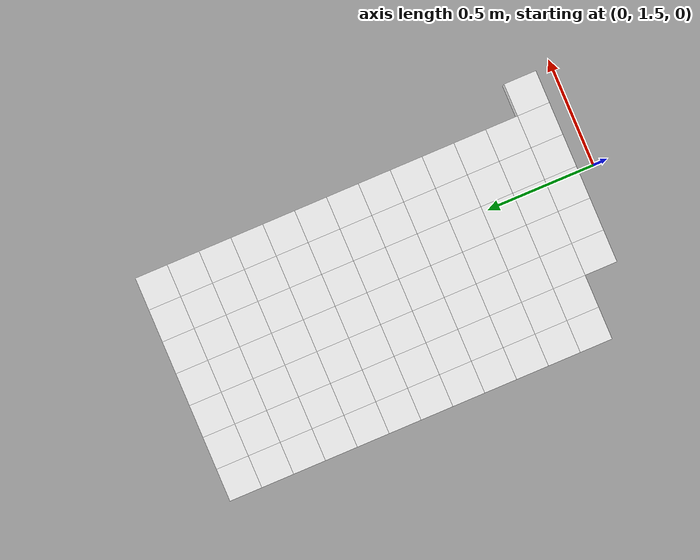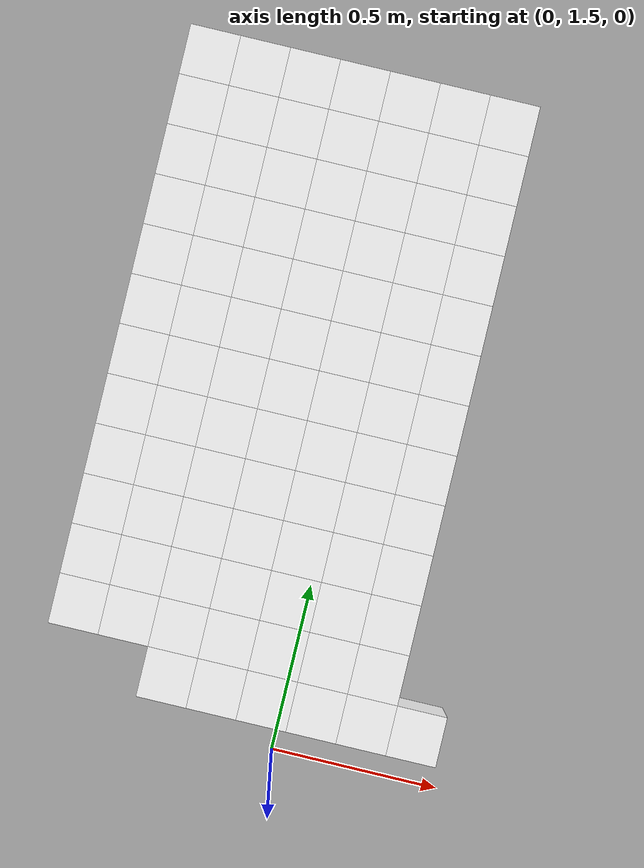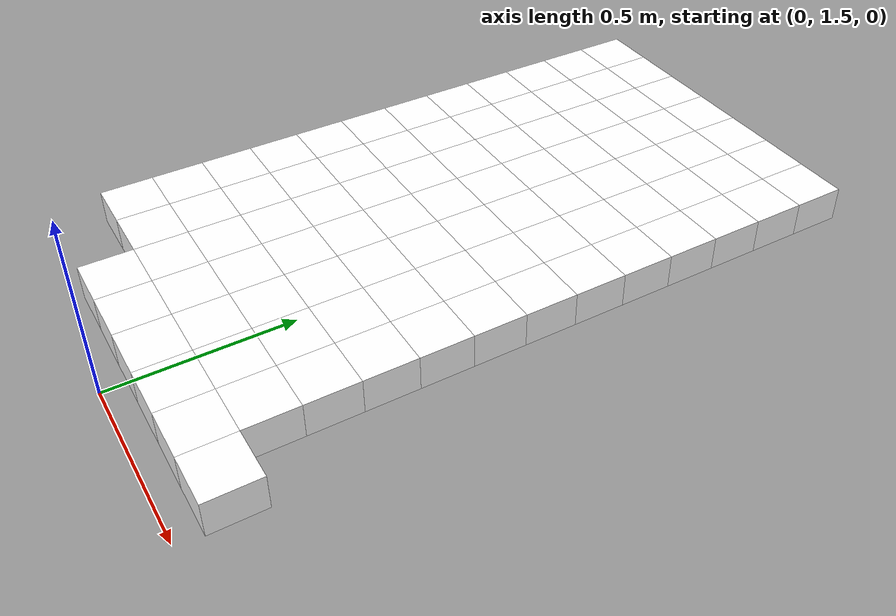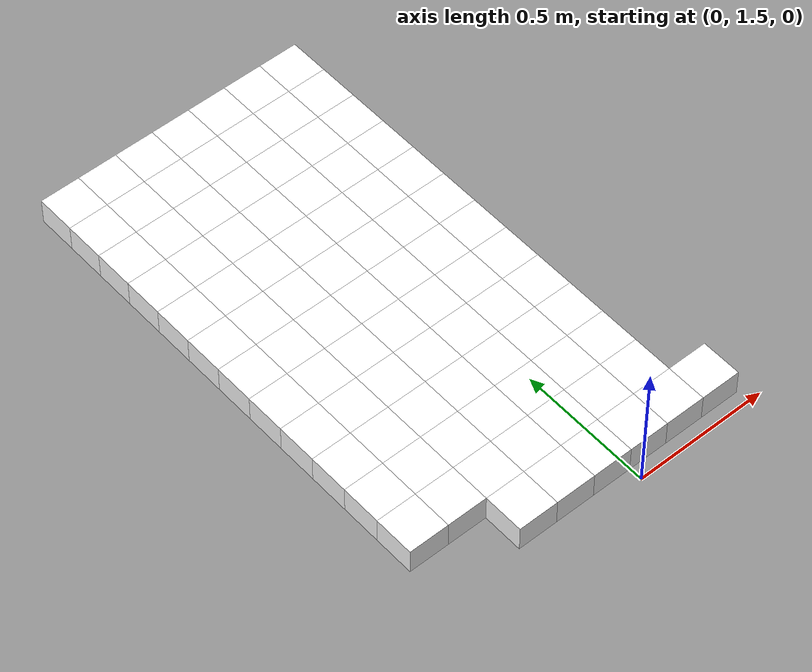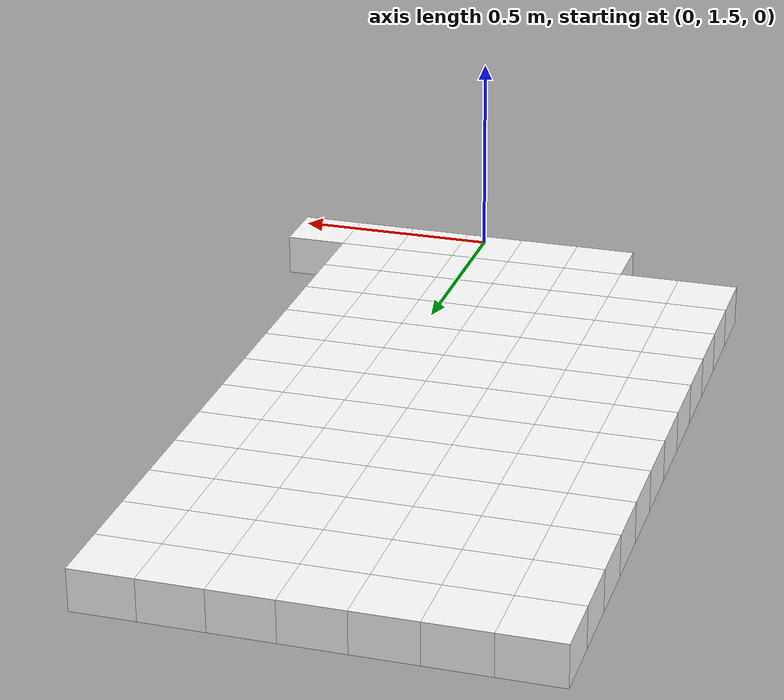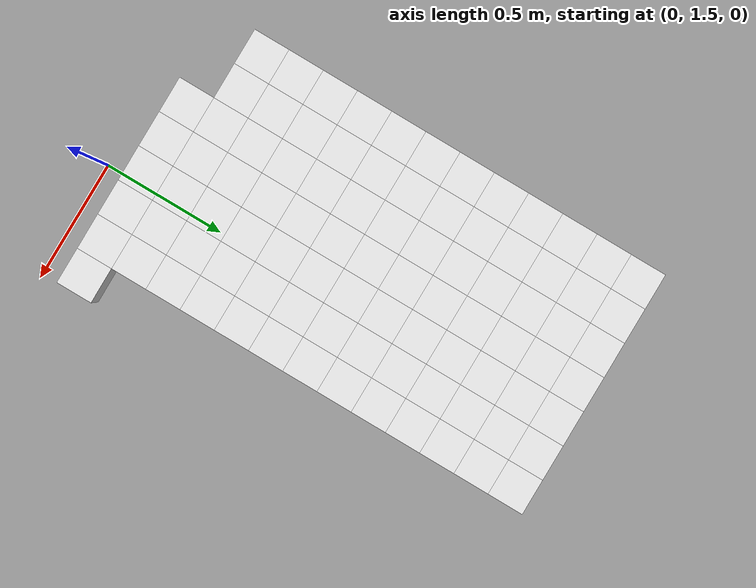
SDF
<sdf version="1.7">
 <world name="default">
  <include><uri>model://sun</uri></include>
  <model name="static_environment">
   <static>true</static>
   <link name="region_151">
    <pose>-0.3500000000000003 1.65 0.0 0.0 0.0 0.0</pose>
    <collision name="region_151_collision">
     <geometry><box><size>0.15 0.15 0.1</size></box></geometry>
     <surface><friction><ode><mu>1.0</mu><mu2>1.0</mu2></ode></friction></surface>
    </collision>
    <visual name="region_151_visual">
     <geometry><box><size>0.15 0.15 0.1</size></box></geometry>
     <material><ambient>1.0 1.0 1.0 1.0</ambient><diffuse>1.0 1.0 1.0 1.0</diffuse></material>
    </visual>
   </link>
   <link name="region_152">
    <pose>-0.2000000000000004 1.65 0.0 0.0 0.0 0.0</pose>
    <collision name="region_152_collision">
     <geometry><box><size>0.15 0.15 0.1</size></box></geometry>
     <surface><friction><ode><mu>1.0</mu><mu2>1.0</mu2></ode></friction></surface>
    </collision>
    <visual name="region_152_visual">
     <geometry><box><size>0.15 0.15 0.1</size></box></geometry>
     <material><ambient>1.0 1.0 1.0 1.0</ambient><diffuse>1.0 1.0 1.0 1.0</diffuse></material>
    </visual>
   </link>
   <link name="region_153">
    <pose>-0.05000000000000049 1.65 0.0 0.0 0.0 0.0</pose>
    <collision name="region_153_collision">
     <geometry><box><size>0.15 0.15 0.1</size></box></geometry>
     <surface><friction><ode><mu>1.0</mu><mu2>1.0</mu2></ode></friction></surface>
    </collision>
    <visual name="region_153_visual">
     <geometry><box><size>0.15 0.15 0.1</size></box></geometry>
     <material><ambient>1.0 1.0 1.0 1.0</ambient><diffuse>1.0 1.0 1.0 1.0</diffuse></material>
    </visual>
   </link>
   <link name="region_154">
    <pose>0.09999999999999964 1.65 0.0 0.0 0.0 0.0</pose>
    <collision name="region_154_collision">
     <geometry><box><size>0.15 0.15 0.1</size></box></geometry>
     <surface><friction><ode><mu>1.0</mu><mu2>1.0</mu2></ode></friction></surface>
    </collision>
    <visual name="region_154_visual">
     <geometry><box><size>0.15 0.15 0.1</size></box></geometry>
     <material><ambient>1.0 1.0 1.0 1.0</ambient><diffuse>1.0 1.0 1.0 1.0</diffuse></material>
    </visual>
   </link>
   <link name="region_155">
    <pose>0.24999999999999956 1.65 0.0 0.0 0.0 0.0</pose>
    <collision name="region_155_collision">
     <geometry><box><size>0.15 0.15 0.1</size></box></geometry>
     <surface><friction><ode><mu>1.0</mu><mu2>1.0</mu2></ode></friction></surface>
    </collision>
    <visual name="region_155_visual">
     <geometry><box><size>0.15 0.15 0.1</size></box></geometry>
     <material><ambient>1.0 1.0 1.0 1.0</ambient><diffuse>1.0 1.0 1.0 1.0</diffuse></material>
    </visual>
   </link>
   <link name="region_156">
    <pose>0.39999999999999947 1.65 0.0 0.0 0.0 0.0</pose>
    <collision name="region_156_collision">
     <geometry><box><size>0.15 0.15 0.1</size></box></geometry>
     <surface><friction><ode><mu>1.0</mu><mu2>1.0</mu2></ode></friction></surface>
    </collision>
    <visual name="region_156_visual">
     <geometry><box><size>0.15 0.15 0.1</size></box></geometry>
     <material><ambient>1.0 1.0 1.0 1.0</ambient><diffuse>1.0 1.0 1.0 1.0</diffuse></material>
    </visual>
   </link>
   <link name="region_169">
    <pose>-0.6500000000000001 1.7999999999999998 0.0 0.0 0.0 0.0</pose>
    <collision name="region_169_collision">
     <geometry><box><size>0.15 0.15 0.1</size></box></geometry>
     <surface><friction><ode><mu>1.0</mu><mu2>1.0</mu2></ode></friction></surface>
    </collision>
    <visual name="region_169_visual">
     <geometry><box><size>0.15 0.15 0.1</size></box></geometry>
     <material><ambient>1.0 1.0 1.0 1.0</ambient><diffuse>1.0 1.0 1.0 1.0</diffuse></material>
    </visual>
   </link>
   <link name="region_170">
    <pose>-0.5000000000000002 1.7999999999999998 0.0 0.0 0.0 0.0</pose>
    <collision name="region_170_collision">
     <geometry><box><size>0.15 0.15 0.1</size></box></geometry>
     <surface><friction><ode><mu>1.0</mu><mu2>1.0</mu2></ode></friction></surface>
    </collision>
    <visual name="region_170_visual">
     <geometry><box><size>0.15 0.15 0.1</size></box></geometry>
     <material><ambient>1.0 1.0 1.0 1.0</ambient><diffuse>1.0 1.0 1.0 1.0</diffuse></material>
    </visual>
   </link>
   <link name="region_171">
    <pose>-0.3500000000000003 1.7999999999999998 0.0 0.0 0.0 0.0</pose>
    <collision name="region_171_collision">
     <geometry><box><size>0.15 0.15 0.1</size></box></geometry>
     <surface><friction><ode><mu>1.0</mu><mu2>1.0</mu2></ode></friction></surface>
    </collision>
    <visual name="region_171_visual">
     <geometry><box><size>0.15 0.15 0.1</size></box></geometry>
     <material><ambient>1.0 1.0 1.0 1.0</ambient><diffuse>1.0 1.0 1.0 1.0</diffuse></material>
    </visual>
   </link>
   <link name="region_172">
    <pose>-0.2000000000000004 1.7999999999999998 0.0 0.0 0.0 0.0</pose>
    <collision name="region_172_collision">
     <geometry><box><size>0.15 0.15 0.1</size></box></geometry>
     <surface><friction><ode><mu>1.0</mu><mu2>1.0</mu2></ode></friction></surface>
    </collision>
    <visual name="region_172_visual">
     <geometry><box><size>0.15 0.15 0.1</size></box></geometry>
     <material><ambient>1.0 1.0 1.0 1.0</ambient><diffuse>1.0 1.0 1.0 1.0</diffuse></material>
    </visual>
   </link>
   <link name="region_173">
    <pose>-0.05000000000000049 1.7999999999999998 0.0 0.0 0.0 0.0</pose>
    <collision name="region_173_collision">
     <geometry><box><size>0.15 0.15 0.1</size></box></geometry>
     <surface><friction><ode><mu>1.0</mu><mu2>1.0</mu2></ode></friction></surface>
    </collision>
    <visual name="region_173_visual">
     <geometry><box><size>0.15 0.15 0.1</size></box></geometry>
     <material><ambient>1.0 1.0 1.0 1.0</ambient><diffuse>1.0 1.0 1.0 1.0</diffuse></material>
    </visual>
   </link>
   <link name="region_174">
    <pose>0.09999999999999964 1.7999999999999998 0.0 0.0 0.0 0.0</pose>
    <collision name="region_174_collision">
     <geometry><box><size>0.15 0.15 0.1</size></box></geometry>
     <surface><friction><ode><mu>1.0</mu><mu2>1.0</mu2></ode></friction></surface>
    </collision>
    <visual name="region_174_visual">
     <geometry><box><size>0.15 0.15 0.1</size></box></geometry>
     <material><ambient>1.0 1.0 1.0 1.0</ambient><diffuse>1.0 1.0 1.0 1.0</diffuse></material>
    </visual>
   </link>
   <link name="region_175">
    <pose>0.24999999999999956 1.7999999999999998 0.0 0.0 0.0 0.0</pose>
    <collision name="region_175_collision">
     <geometry><box><size>0.15 0.15 0.1</size></box></geometry>
     <surface><friction><ode><mu>1.0</mu><mu2>1.0</mu2></ode></friction></surface>
    </collision>
    <visual name="region_175_visual">
     <geometry><box><size>0.15 0.15 0.1</size></box></geometry>
     <material><ambient>1.0 1.0 1.0 1.0</ambient><diffuse>1.0 1.0 1.0 1.0</diffuse></material>
    </visual>
   </link>
   <link name="region_189">
    <pose>-0.6500000000000001 1.9499999999999997 0.0 0.0 0.0 0.0</pose>
    <collision name="region_189_collision">
     <geometry><box><size>0.15 0.15 0.1</size></box></geometry>
     <surface><friction><ode><mu>1.0</mu><mu2>1.0</mu2></ode></friction></surface>
    </collision>
    <visual name="region_189_visual">
     <geometry><box><size>0.15 0.15 0.1</size></box></geometry>
     <material><ambient>1.0 1.0 1.0 1.0</ambient><diffuse>1.0 1.0 1.0 1.0</diffuse></material>
    </visual>
   </link>
   <link name="region_190">
    <pose>-0.5000000000000002 1.9499999999999997 0.0 0.0 0.0 0.0</pose>
    <collision name="region_190_collision">
     <geometry><box><size>0.15 0.15 0.1</size></box></geometry>
     <surface><friction><ode><mu>1.0</mu><mu2>1.0</mu2></ode></friction></surface>
    </collision>
    <visual name="region_190_visual">
     <geometry><box><size>0.15 0.15 0.1</size></box></geometry>
     <material><ambient>1.0 1.0 1.0 1.0</ambient><diffuse>1.0 1.0 1.0 1.0</diffuse></material>
    </visual>
   </link>
   <link name="region_191">
    <pose>-0.3500000000000003 1.9499999999999997 0.0 0.0 0.0 0.0</pose>
    <collision name="region_191_collision">
     <geometry><box><size>0.15 0.15 0.1</size></box></geometry>
     <surface><friction><ode><mu>1.0</mu><mu2>1.0</mu2></ode></friction></surface>
    </collision>
    <visual name="region_191_visual">
     <geometry><box><size>0.15 0.15 0.1</size></box></geometry>
     <material><ambient>1.0 1.0 1.0 1.0</ambient><diffuse>1.0 1.0 1.0 1.0</diffuse></material>
    </visual>
   </link>
   <link name="region_192">
    <pose>-0.2000000000000004 1.9499999999999997 0.0 0.0 0.0 0.0</pose>
    <collision name="region_192_collision">
     <geometry><box><size>0.15 0.15 0.1</size></box></geometry>
     <surface><friction><ode><mu>1.0</mu><mu2>1.0</mu2></ode></friction></surface>
    </collision>
    <visual name="region_192_visual">
     <geometry><box><size>0.15 0.15 0.1</size></box></geometry>
     <material><ambient>1.0 1.0 1.0 1.0</ambient><diffuse>1.0 1.0 1.0 1.0</diffuse></material>
    </visual>
   </link>
   <link name="region_193">
    <pose>-0.05000000000000049 1.9499999999999997 0.0 0.0 0.0 0.0</pose>
    <collision name="region_193_collision">
     <geometry><box><size>0.15 0.15 0.1</size></box></geometry>
     <surface><friction><ode><mu>1.0</mu><mu2>1.0</mu2></ode></friction></surface>
    </collision>
    <visual name="region_193_visual">
     <geometry><box><size>0.15 0.15 0.1</size></box></geometry>
     <material><ambient>1.0 1.0 1.0 1.0</ambient><diffuse>1.0 1.0 1.0 1.0</diffuse></material>
    </visual>
   </link>
   <link name="region_194">
    <pose>0.09999999999999964 1.9499999999999997 0.0 0.0 0.0 0.0</pose>
    <collision name="region_194_collision">
     <geometry><box><size>0.15 0.15 0.1</size></box></geometry>
     <surface><friction><ode><mu>1.0</mu><mu2>1.0</mu2></ode></friction></surface>
    </collision>
    <visual name="region_194_visual">
     <geometry><box><size>0.15 0.15 0.1</size></box></geometry>
     <material><ambient>1.0 1.0 1.0 1.0</ambient><diffuse>1.0 1.0 1.0 1.0</diffuse></material>
    </visual>
   </link>
   <link name="region_195">
    <pose>0.24999999999999956 1.9499999999999997 0.0 0.0 0.0 0.0</pose>
    <collision name="region_195_collision">
     <geometry><box><size>0.15 0.15 0.1</size></box></geometry>
     <surface><friction><ode><mu>1.0</mu><mu2>1.0</mu2></ode></friction></surface>
    </collision>
    <visual name="region_195_visual">
     <geometry><box><size>0.15 0.15 0.1</size></box></geometry>
     <material><ambient>1.0 1.0 1.0 1.0</ambient><diffuse>1.0 1.0 1.0 1.0</diffuse></material>
    </visual>
   </link>
   <link name="region_209">
    <pose>-0.6500000000000001 2.0999999999999996 0.0 0.0 0.0 0.0</pose>
    <collision name="region_209_collision">
     <geometry><box><size>0.15 0.15 0.1</size></box></geometry>
     <surface><friction><ode><mu>1.0</mu><mu2>1.0</mu2></ode></friction></surface>
    </collision>
    <visual name="region_209_visual">
     <geometry><box><size>0.15 0.15 0.1</size></box></geometry>
     <material><ambient>1.0 1.0 1.0 1.0</ambient><diffuse>1.0 1.0 1.0 1.0</diffuse></material>
    </visual>
   </link>
   <link name="region_210">
    <pose>-0.5000000000000002 2.0999999999999996 0.0 0.0 0.0 0.0</pose>
    <collision name="region_210_collision">
     <geometry><box><size>0.15 0.15 0.1</size></box></geometry>
     <surface><friction><ode><mu>1.0</mu><mu2>1.0</mu2></ode></friction></surface>
    </collision>
    <visual name="region_210_visual">
     <geometry><box><size>0.15 0.15 0.1</size></box></geometry>
     <material><ambient>1.0 1.0 1.0 1.0</ambient><diffuse>1.0 1.0 1.0 1.0</diffuse></material>
    </visual>
   </link>
   <link name="region_211">
    <pose>-0.3500000000000003 2.0999999999999996 0.0 0.0 0.0 0.0</pose>
    <collision name="region_211_collision">
     <geometry><box><size>0.15 0.15 0.1</size></box></geometry>
     <surface><friction><ode><mu>1.0</mu><mu2>1.0</mu2></ode></friction></surface>
    </collision>
    <visual name="region_211_visual">
     <geometry><box><size>0.15 0.15 0.1</size></box></geometry>
     <material><ambient>1.0 1.0 1.0 1.0</ambient><diffuse>1.0 1.0 1.0 1.0</diffuse></material>
    </visual>
   </link>
   <link name="region_212">
    <pose>-0.2000000000000004 2.0999999999999996 0.0 0.0 0.0 0.0</pose>
    <collision name="region_212_collision">
     <geometry><box><size>0.15 0.15 0.1</size></box></geometry>
     <surface><friction><ode><mu>1.0</mu><mu2>1.0</mu2></ode></friction></surface>
    </collision>
    <visual name="region_212_visual">
     <geometry><box><size>0.15 0.15 0.1</size></box></geometry>
     <material><ambient>1.0 1.0 1.0 1.0</ambient><diffuse>1.0 1.0 1.0 1.0</diffuse></material>
    </visual>
   </link>
   <link name="region_213">
    <pose>-0.05000000000000049 2.0999999999999996 0.0 0.0 0.0 0.0</pose>
    <collision name="region_213_collision">
     <geometry><box><size>0.15 0.15 0.1</size></box></geometry>
     <surface><friction><ode><mu>1.0</mu><mu2>1.0</mu2></ode></friction></surface>
    </collision>
    <visual name="region_213_visual">
     <geometry><box><size>0.15 0.15 0.1</size></box></geometry>
     <material><ambient>1.0 1.0 1.0 1.0</ambient><diffuse>1.0 1.0 1.0 1.0</diffuse></material>
    </visual>
   </link>
   <link name="region_214">
    <pose>0.09999999999999964 2.0999999999999996 0.0 0.0 0.0 0.0</pose>
    <collision name="region_214_collision">
     <geometry><box><size>0.15 0.15 0.1</size></box></geometry>
     <surface><friction><ode><mu>1.0</mu><mu2>1.0</mu2></ode></friction></surface>
    </collision>
    <visual name="region_214_visual">
     <geometry><box><size>0.15 0.15 0.1</size></box></geometry>
     <material><ambient>1.0 1.0 1.0 1.0</ambient><diffuse>1.0 1.0 1.0 1.0</diffuse></material>
    </visual>
   </link>
   <link name="region_215">
    <pose>0.24999999999999956 2.0999999999999996 0.0 0.0 0.0 0.0</pose>
    <collision name="region_215_collision">
     <geometry><box><size>0.15 0.15 0.1</size></box></geometry>
     <surface><friction><ode><mu>1.0</mu><mu2>1.0</mu2></ode></friction></surface>
    </collision>
    <visual name="region_215_visual">
     <geometry><box><size>0.15 0.15 0.1</size></box></geometry>
     <material><ambient>1.0 1.0 1.0 1.0</ambient><diffuse>1.0 1.0 1.0 1.0</diffuse></material>
    </visual>
   </link>
   <link name="region_229">
    <pose>-0.6500000000000001 2.2499999999999996 0.0 0.0 0.0 0.0</pose>
    <collision name="region_229_collision">
     <geometry><box><size>0.15 0.15 0.1</size></box></geometry>
     <surface><friction><ode><mu>1.0</mu><mu2>1.0</mu2></ode></friction></surface>
    </collision>
    <visual name="region_229_visual">
     <geometry><box><size>0.15 0.15 0.1</size></box></geometry>
     <material><ambient>1.0 1.0 1.0 1.0</ambient><diffuse>1.0 1.0 1.0 1.0</diffuse></material>
    </visual>
   </link>
   <link name="region_230">
    <pose>-0.5000000000000002 2.2499999999999996 0.0 0.0 0.0 0.0</pose>
    <collision name="region_230_collision">
     <geometry><box><size>0.15 0.15 0.1</size></box></geometry>
     <surface><friction><ode><mu>1.0</mu><mu2>1.0</mu2></ode></friction></surface>
    </collision>
    <visual name="region_230_visual">
     <geometry><box><size>0.15 0.15 0.1</size></box></geometry>
     <material><ambient>1.0 1.0 1.0 1.0</ambient><diffuse>1.0 1.0 1.0 1.0</diffuse></material>
    </visual>
   </link>
   <link name="region_231">
    <pose>-0.3500000000000003 2.2499999999999996 0.0 0.0 0.0 0.0</pose>
    <collision name="region_231_collision">
     <geometry><box><size>0.15 0.15 0.1</size></box></geometry>
     <surface><friction><ode><mu>1.0</mu><mu2>1.0</mu2></ode></friction></surface>
    </collision>
    <visual name="region_231_visual">
     <geometry><box><size>0.15 0.15 0.1</size></box></geometry>
     <material><ambient>1.0 1.0 1.0 1.0</ambient><diffuse>1.0 1.0 1.0 1.0</diffuse></material>
    </visual>
   </link>
   <link name="region_232">
    <pose>-0.2000000000000004 2.2499999999999996 0.0 0.0 0.0 0.0</pose>
    <collision name="region_232_collision">
     <geometry><box><size>0.15 0.15 0.1</size></box></geometry>
     <surface><friction><ode><mu>1.0</mu><mu2>1.0</mu2></ode></friction></surface>
    </collision>
    <visual name="region_232_visual">
     <geometry><box><size>0.15 0.15 0.1</size></box></geometry>
     <material><ambient>1.0 1.0 1.0 1.0</ambient><diffuse>1.0 1.0 1.0 1.0</diffuse></material>
    </visual>
   </link>
   <link name="region_233">
    <pose>-0.05000000000000049 2.2499999999999996 0.0 0.0 0.0 0.0</pose>
    <collision name="region_233_collision">
     <geometry><box><size>0.15 0.15 0.1</size></box></geometry>
     <surface><friction><ode><mu>1.0</mu><mu2>1.0</mu2></ode></friction></surface>
    </collision>
    <visual name="region_233_visual">
     <geometry><box><size>0.15 0.15 0.1</size></box></geometry>
     <material><ambient>1.0 1.0 1.0 1.0</ambient><diffuse>1.0 1.0 1.0 1.0</diffuse></material>
    </visual>
   </link>
   <link name="region_234">
    <pose>0.09999999999999964 2.2499999999999996 0.0 0.0 0.0 0.0</pose>
    <collision name="region_234_collision">
     <geometry><box><size>0.15 0.15 0.1</size></box></geometry>
     <surface><friction><ode><mu>1.0</mu><mu2>1.0</mu2></ode></friction></surface>
    </collision>
    <visual name="region_234_visual">
     <geometry><box><size>0.15 0.15 0.1</size></box></geometry>
     <material><ambient>1.0 1.0 1.0 1.0</ambient><diffuse>1.0 1.0 1.0 1.0</diffuse></material>
    </visual>
   </link>
   <link name="region_235">
    <pose>0.24999999999999956 2.2499999999999996 0.0 0.0 0.0 0.0</pose>
    <collision name="region_235_collision">
     <geometry><box><size>0.15 0.15 0.1</size></box></geometry>
     <surface><friction><ode><mu>1.0</mu><mu2>1.0</mu2></ode></friction></surface>
    </collision>
    <visual name="region_235_visual">
     <geometry><box><size>0.15 0.15 0.1</size></box></geometry>
     <material><ambient>1.0 1.0 1.0 1.0</ambient><diffuse>1.0 1.0 1.0 1.0</diffuse></material>
    </visual>
   </link>
   <link name="region_249">
    <pose>-0.6500000000000001 2.3999999999999995 0.0 0.0 0.0 0.0</pose>
    <collision name="region_249_collision">
     <geometry><box><size>0.15 0.15 0.1</size></box></geometry>
     <surface><friction><ode><mu>1.0</mu><mu2>1.0</mu2></ode></friction></surface>
    </collision>
    <visual name="region_249_visual">
     <geometry><box><size>0.15 0.15 0.1</size></box></geometry>
     <material><ambient>1.0 1.0 1.0 1.0</ambient><diffuse>1.0 1.0 1.0 1.0</diffuse></material>
    </visual>
   </link>
   <link name="region_250">
    <pose>-0.5000000000000002 2.3999999999999995 0.0 0.0 0.0 0.0</pose>
    <collision name="region_250_collision">
     <geometry><box><size>0.15 0.15 0.1</size></box></geometry>
     <surface><friction><ode><mu>1.0</mu><mu2>1.0</mu2></ode></friction></surface>
    </collision>
    <visual name="region_250_visual">
     <geometry><box><size>0.15 0.15 0.1</size></box></geometry>
     <material><ambient>1.0 1.0 1.0 1.0</ambient><diffuse>1.0 1.0 1.0 1.0</diffuse></material>
    </visual>
   </link>
   <link name="region_251">
    <pose>-0.3500000000000003 2.3999999999999995 0.0 0.0 0.0 0.0</pose>
    <collision name="region_251_collision">
     <geometry><box><size>0.15 0.15 0.1</size></box></geometry>
     <surface><friction><ode><mu>1.0</mu><mu2>1.0</mu2></ode></friction></surface>
    </collision>
    <visual name="region_251_visual">
     <geometry><box><size>0.15 0.15 0.1</size></box></geometry>
     <material><ambient>1.0 1.0 1.0 1.0</ambient><diffuse>1.0 1.0 1.0 1.0</diffuse></material>
    </visual>
   </link>
   <link name="region_252">
    <pose>-0.2000000000000004 2.3999999999999995 0.0 0.0 0.0 0.0</pose>
    <collision name="region_252_collision">
     <geometry><box><size>0.15 0.15 0.1</size></box></geometry>
     <surface><friction><ode><mu>1.0</mu><mu2>1.0</mu2></ode></friction></surface>
    </collision>
    <visual name="region_252_visual">
     <geometry><box><size>0.15 0.15 0.1</size></box></geometry>
     <material><ambient>1.0 1.0 1.0 1.0</ambient><diffuse>1.0 1.0 1.0 1.0</diffuse></material>
    </visual>
   </link>
   <link name="region_253">
    <pose>-0.05000000000000049 2.3999999999999995 0.0 0.0 0.0 0.0</pose>
    <collision name="region_253_collision">
     <geometry><box><size>0.15 0.15 0.1</size></box></geometry>
     <surface><friction><ode><mu>1.0</mu><mu2>1.0</mu2></ode></friction></surface>
    </collision>
    <visual name="region_253_visual">
     <geometry><box><size>0.15 0.15 0.1</size></box></geometry>
     <material><ambient>1.0 1.0 1.0 1.0</ambient><diffuse>1.0 1.0 1.0 1.0</diffuse></material>
    </visual>
   </link>
   <link name="region_254">
    <pose>0.09999999999999964 2.3999999999999995 0.0 0.0 0.0 0.0</pose>
    <collision name="region_254_collision">
     <geometry><box><size>0.15 0.15 0.1</size></box></geometry>
     <surface><friction><ode><mu>1.0</mu><mu2>1.0</mu2></ode></friction></surface>
    </collision>
    <visual name="region_254_visual">
     <geometry><box><size>0.15 0.15 0.1</size></box></geometry>
     <material><ambient>1.0 1.0 1.0 1.0</ambient><diffuse>1.0 1.0 1.0 1.0</diffuse></material>
    </visual>
   </link>
   <link name="region_255">
    <pose>0.24999999999999956 2.3999999999999995 0.0 0.0 0.0 0.0</pose>
    <collision name="region_255_collision">
     <geometry><box><size>0.15 0.15 0.1</size></box></geometry>
     <surface><friction><ode><mu>1.0</mu><mu2>1.0</mu2></ode></friction></surface>
    </collision>
    <visual name="region_255_visual">
     <geometry><box><size>0.15 0.15 0.1</size></box></geometry>
     <material><ambient>1.0 1.0 1.0 1.0</ambient><diffuse>1.0 1.0 1.0 1.0</diffuse></material>
    </visual>
   </link>
   <link name="region_269">
    <pose>-0.6500000000000001 2.5499999999999994 0.0 0.0 0.0 0.0</pose>
    <collision name="region_269_collision">
     <geometry><box><size>0.15 0.15 0.1</size></box></geometry>
     <surface><friction><ode><mu>1.0</mu><mu2>1.0</mu2></ode></friction></surface>
    </collision>
    <visual name="region_269_visual">
     <geometry><box><size>0.15 0.15 0.1</size></box></geometry>
     <material><ambient>1.0 1.0 1.0 1.0</ambient><diffuse>1.0 1.0 1.0 1.0</diffuse></material>
    </visual>
   </link>
   <link name="region_270">
    <pose>-0.5000000000000002 2.5499999999999994 0.0 0.0 0.0 0.0</pose>
    <collision name="region_270_collision">
     <geometry><box><size>0.15 0.15 0.1</size></box></geometry>
     <surface><friction><ode><mu>1.0</mu><mu2>1.0</mu2></ode></friction></surface>
    </collision>
    <visual name="region_270_visual">
     <geometry><box><size>0.15 0.15 0.1</size></box></geometry>
     <material><ambient>1.0 1.0 1.0 1.0</ambient><diffuse>1.0 1.0 1.0 1.0</diffuse></material>
    </visual>
   </link>
   <link name="region_271">
    <pose>-0.3500000000000003 2.5499999999999994 0.0 0.0 0.0 0.0</pose>
    <collision name="region_271_collision">
     <geometry><box><size>0.15 0.15 0.1</size></box></geometry>
     <surface><friction><ode><mu>1.0</mu><mu2>1.0</mu2></ode></friction></surface>
    </collision>
    <visual name="region_271_visual">
     <geometry><box><size>0.15 0.15 0.1</size></box></geometry>
     <material><ambient>1.0 1.0 1.0 1.0</ambient><diffuse>1.0 1.0 1.0 1.0</diffuse></material>
    </visual>
   </link>
   <link name="region_272">
    <pose>-0.2000000000000004 2.5499999999999994 0.0 0.0 0.0 0.0</pose>
    <collision name="region_272_collision">
     <geometry><box><size>0.15 0.15 0.1</size></box></geometry>
     <surface><friction><ode><mu>1.0</mu><mu2>1.0</mu2></ode></friction></surface>
    </collision>
    <visual name="region_272_visual">
     <geometry><box><size>0.15 0.15 0.1</size></box></geometry>
     <material><ambient>1.0 1.0 1.0 1.0</ambient><diffuse>1.0 1.0 1.0 1.0</diffuse></material>
    </visual>
   </link>
   <link name="region_273">
    <pose>-0.05000000000000049 2.5499999999999994 0.0 0.0 0.0 0.0</pose>
    <collision name="region_273_collision">
     <geometry><box><size>0.15 0.15 0.1</size></box></geometry>
     <surface><friction><ode><mu>1.0</mu><mu2>1.0</mu2></ode></friction></surface>
    </collision>
    <visual name="region_273_visual">
     <geometry><box><size>0.15 0.15 0.1</size></box></geometry>
     <material><ambient>1.0 1.0 1.0 1.0</ambient><diffuse>1.0 1.0 1.0 1.0</diffuse></material>
    </visual>
   </link>
   <link name="region_274">
    <pose>0.09999999999999964 2.5499999999999994 0.0 0.0 0.0 0.0</pose>
    <collision name="region_274_collision">
     <geometry><box><size>0.15 0.15 0.1</size></box></geometry>
     <surface><friction><ode><mu>1.0</mu><mu2>1.0</mu2></ode></friction></surface>
    </collision>
    <visual name="region_274_visual">
     <geometry><box><size>0.15 0.15 0.1</size></box></geometry>
     <material><ambient>1.0 1.0 1.0 1.0</ambient><diffuse>1.0 1.0 1.0 1.0</diffuse></material>
    </visual>
   </link>
   <link name="region_275">
    <pose>0.24999999999999956 2.5499999999999994 0.0 0.0 0.0 0.0</pose>
    <collision name="region_275_collision">
     <geometry><box><size>0.15 0.15 0.1</size></box></geometry>
     <surface><friction><ode><mu>1.0</mu><mu2>1.0</mu2></ode></friction></surface>
    </collision>
    <visual name="region_275_visual">
     <geometry><box><size>0.15 0.15 0.1</size></box></geometry>
     <material><ambient>1.0 1.0 1.0 1.0</ambient><diffuse>1.0 1.0 1.0 1.0</diffuse></material>
    </visual>
   </link>
   <link name="region_289">
    <pose>-0.6500000000000001 2.6999999999999997 0.0 0.0 0.0 0.0</pose>
    <collision name="region_289_collision">
     <geometry><box><size>0.15 0.15 0.1</size></box></geometry>
     <surface><friction><ode><mu>1.0</mu><mu2>1.0</mu2></ode></friction></surface>
    </collision>
    <visual name="region_289_visual">
     <geometry><box><size>0.15 0.15 0.1</size></box></geometry>
     <material><ambient>1.0 1.0 1.0 1.0</ambient><diffuse>1.0 1.0 1.0 1.0</diffuse></material>
    </visual>
   </link>
   <link name="region_290">
    <pose>-0.5000000000000002 2.6999999999999997 0.0 0.0 0.0 0.0</pose>
    <collision name="region_290_collision">
     <geometry><box><size>0.15 0.15 0.1</size></box></geometry>
     <surface><friction><ode><mu>1.0</mu><mu2>1.0</mu2></ode></friction></surface>
    </collision>
    <visual name="region_290_visual">
     <geometry><box><size>0.15 0.15 0.1</size></box></geometry>
     <material><ambient>1.0 1.0 1.0 1.0</ambient><diffuse>1.0 1.0 1.0 1.0</diffuse></material>
    </visual>
   </link>
   <link name="region_291">
    <pose>-0.3500000000000003 2.6999999999999997 0.0 0.0 0.0 0.0</pose>
    <collision name="region_291_collision">
     <geometry><box><size>0.15 0.15 0.1</size></box></geometry>
     <surface><friction><ode><mu>1.0</mu><mu2>1.0</mu2></ode></friction></surface>
    </collision>
    <visual name="region_291_visual">
     <geometry><box><size>0.15 0.15 0.1</size></box></geometry>
     <material><ambient>1.0 1.0 1.0 1.0</ambient><diffuse>1.0 1.0 1.0 1.0</diffuse></material>
    </visual>
   </link>
   <link name="region_292">
    <pose>-0.2000000000000004 2.6999999999999997 0.0 0.0 0.0 0.0</pose>
    <collision name="region_292_collision">
     <geometry><box><size>0.15 0.15 0.1</size></box></geometry>
     <surface><friction><ode><mu>1.0</mu><mu2>1.0</mu2></ode></friction></surface>
    </collision>
    <visual name="region_292_visual">
     <geometry><box><size>0.15 0.15 0.1</size></box></geometry>
     <material><ambient>1.0 1.0 1.0 1.0</ambient><diffuse>1.0 1.0 1.0 1.0</diffuse></material>
    </visual>
   </link>
   <link name="region_293">
    <pose>-0.05000000000000049 2.6999999999999997 0.0 0.0 0.0 0.0</pose>
    <collision name="region_293_collision">
     <geometry><box><size>0.15 0.15 0.1</size></box></geometry>
     <surface><friction><ode><mu>1.0</mu><mu2>1.0</mu2></ode></friction></surface>
    </collision>
    <visual name="region_293_visual">
     <geometry><box><size>0.15 0.15 0.1</size></box></geometry>
     <material><ambient>1.0 1.0 1.0 1.0</ambient><diffuse>1.0 1.0 1.0 1.0</diffuse></material>
    </visual>
   </link>
   <link name="region_294">
    <pose>0.09999999999999964 2.6999999999999997 0.0 0.0 0.0 0.0</pose>
    <collision name="region_294_collision">
     <geometry><box><size>0.15 0.15 0.1</size></box></geometry>
     <surface><friction><ode><mu>1.0</mu><mu2>1.0</mu2></ode></friction></surface>
    </collision>
    <visual name="region_294_visual">
     <geometry><box><size>0.15 0.15 0.1</size></box></geometry>
     <material><ambient>1.0 1.0 1.0 1.0</ambient><diffuse>1.0 1.0 1.0 1.0</diffuse></material>
    </visual>
   </link>
   <link name="region_295">
    <pose>0.24999999999999956 2.6999999999999997 0.0 0.0 0.0 0.0</pose>
    <collision name="region_295_collision">
     <geometry><box><size>0.15 0.15 0.1</size></box></geometry>
     <surface><friction><ode><mu>1.0</mu><mu2>1.0</mu2></ode></friction></surface>
    </collision>
    <visual name="region_295_visual">
     <geometry><box><size>0.15 0.15 0.1</size></box></geometry>
     <material><ambient>1.0 1.0 1.0 1.0</ambient><diffuse>1.0 1.0 1.0 1.0</diffuse></material>
    </visual>
   </link>
   <link name="region_309">
    <pose>-0.6500000000000001 2.8499999999999996 0.0 0.0 0.0 0.0</pose>
    <collision name="region_309_collision">
     <geometry><box><size>0.15 0.15 0.1</size></box></geometry>
     <surface><friction><ode><mu>1.0</mu><mu2>1.0</mu2></ode></friction></surface>
    </collision>
    <visual name="region_309_visual">
     <geometry><box><size>0.15 0.15 0.1</size></box></geometry>
     <material><ambient>1.0 1.0 1.0 1.0</ambient><diffuse>1.0 1.0 1.0 1.0</diffuse></material>
    </visual>
   </link>
   <link name="region_310">
    <pose>-0.5000000000000002 2.8499999999999996 0.0 0.0 0.0 0.0</pose>
    <collision name="region_310_collision">
     <geometry><box><size>0.15 0.15 0.1</size></box></geometry>
     <surface><friction><ode><mu>1.0</mu><mu2>1.0</mu2></ode></friction></surface>
    </collision>
    <visual name="region_310_visual">
     <geometry><box><size>0.15 0.15 0.1</size></box></geometry>
     <material><ambient>1.0 1.0 1.0 1.0</ambient><diffuse>1.0 1.0 1.0 1.0</diffuse></material>
    </visual>
   </link>
   <link name="region_311">
    <pose>-0.3500000000000003 2.8499999999999996 0.0 0.0 0.0 0.0</pose>
    <collision name="region_311_collision">
     <geometry><box><size>0.15 0.15 0.1</size></box></geometry>
     <surface><friction><ode><mu>1.0</mu><mu2>1.0</mu2></ode></friction></surface>
    </collision>
    <visual name="region_311_visual">
     <geometry><box><size>0.15 0.15 0.1</size></box></geometry>
     <material><ambient>1.0 1.0 1.0 1.0</ambient><diffuse>1.0 1.0 1.0 1.0</diffuse></material>
    </visual>
   </link>
   <link name="region_312">
    <pose>-0.2000000000000004 2.8499999999999996 0.0 0.0 0.0 0.0</pose>
    <collision name="region_312_collision">
     <geometry><box><size>0.15 0.15 0.1</size></box></geometry>
     <surface><friction><ode><mu>1.0</mu><mu2>1.0</mu2></ode></friction></surface>
    </collision>
    <visual name="region_312_visual">
     <geometry><box><size>0.15 0.15 0.1</size></box></geometry>
     <material><ambient>1.0 1.0 1.0 1.0</ambient><diffuse>1.0 1.0 1.0 1.0</diffuse></material>
    </visual>
   </link>
   <link name="region_313">
    <pose>-0.05000000000000049 2.8499999999999996 0.0 0.0 0.0 0.0</pose>
    <collision name="region_313_collision">
     <geometry><box><size>0.15 0.15 0.1</size></box></geometry>
     <surface><friction><ode><mu>1.0</mu><mu2>1.0</mu2></ode></friction></surface>
    </collision>
    <visual name="region_313_visual">
     <geometry><box><size>0.15 0.15 0.1</size></box></geometry>
     <material><ambient>1.0 1.0 1.0 1.0</ambient><diffuse>1.0 1.0 1.0 1.0</diffuse></material>
    </visual>
   </link>
   <link name="region_314">
    <pose>0.09999999999999964 2.8499999999999996 0.0 0.0 0.0 0.0</pose>
    <collision name="region_314_collision">
     <geometry><box><size>0.15 0.15 0.1</size></box></geometry>
     <surface><friction><ode><mu>1.0</mu><mu2>1.0</mu2></ode></friction></surface>
    </collision>
    <visual name="region_314_visual">
     <geometry><box><size>0.15 0.15 0.1</size></box></geometry>
     <material><ambient>1.0 1.0 1.0 1.0</ambient><diffuse>1.0 1.0 1.0 1.0</diffuse></material>
    </visual>
   </link>
   <link name="region_315">
    <pose>0.24999999999999956 2.8499999999999996 0.0 0.0 0.0 0.0</pose>
    <collision name="region_315_collision">
     <geometry><box><size>0.15 0.15 0.1</size></box></geometry>
     <surface><friction><ode><mu>1.0</mu><mu2>1.0</mu2></ode></friction></surface>
    </collision>
    <visual name="region_315_visual">
     <geometry><box><size>0.15 0.15 0.1</size></box></geometry>
     <material><ambient>1.0 1.0 1.0 1.0</ambient><diffuse>1.0 1.0 1.0 1.0</diffuse></material>
    </visual>
   </link>
   <link name="region_329">
    <pose>-0.6500000000000001 2.9999999999999996 0.0 0.0 0.0 0.0</pose>
    <collision name="region_329_collision">
     <geometry><box><size>0.15 0.15 0.1</size></box></geometry>
     <surface><friction><ode><mu>1.0</mu><mu2>1.0</mu2></ode></friction></surface>
    </collision>
    <visual name="region_329_visual">
     <geometry><box><size>0.15 0.15 0.1</size></box></geometry>
     <material><ambient>1.0 1.0 1.0 1.0</ambient><diffuse>1.0 1.0 1.0 1.0</diffuse></material>
    </visual>
   </link>
   <link name="region_330">
    <pose>-0.5000000000000002 2.9999999999999996 0.0 0.0 0.0 0.0</pose>
    <collision name="region_330_collision">
     <geometry><box><size>0.15 0.15 0.1</size></box></geometry>
     <surface><friction><ode><mu>1.0</mu><mu2>1.0</mu2></ode></friction></surface>
    </collision>
    <visual name="region_330_visual">
     <geometry><box><size>0.15 0.15 0.1</size></box></geometry>
     <material><ambient>1.0 1.0 1.0 1.0</ambient><diffuse>1.0 1.0 1.0 1.0</diffuse></material>
    </visual>
   </link>
   <link name="region_331">
    <pose>-0.3500000000000003 2.9999999999999996 0.0 0.0 0.0 0.0</pose>
    <collision name="region_331_collision">
     <geometry><box><size>0.15 0.15 0.1</size></box></geometry>
     <surface><friction><ode><mu>1.0</mu><mu2>1.0</mu2></ode></friction></surface>
    </collision>
    <visual name="region_331_visual">
     <geometry><box><size>0.15 0.15 0.1</size></box></geometry>
     <material><ambient>1.0 1.0 1.0 1.0</ambient><diffuse>1.0 1.0 1.0 1.0</diffuse></material>
    </visual>
   </link>
   <link name="region_332">
    <pose>-0.2000000000000004 2.9999999999999996 0.0 0.0 0.0 0.0</pose>
    <collision name="region_332_collision">
     <geometry><box><size>0.15 0.15 0.1</size></box></geometry>
     <surface><friction><ode><mu>1.0</mu><mu2>1.0</mu2></ode></friction></surface>
    </collision>
    <visual name="region_332_visual">
     <geometry><box><size>0.15 0.15 0.1</size></box></geometry>
     <material><ambient>1.0 1.0 1.0 1.0</ambient><diffuse>1.0 1.0 1.0 1.0</diffuse></material>
    </visual>
   </link>
   <link name="region_333">
    <pose>-0.05000000000000049 2.9999999999999996 0.0 0.0 0.0 0.0</pose>
    <collision name="region_333_collision">
     <geometry><box><size>0.15 0.15 0.1</size></box></geometry>
     <surface><friction><ode><mu>1.0</mu><mu2>1.0</mu2></ode></friction></surface>
    </collision>
    <visual name="region_333_visual">
     <geometry><box><size>0.15 0.15 0.1</size></box></geometry>
     <material><ambient>1.0 1.0 1.0 1.0</ambient><diffuse>1.0 1.0 1.0 1.0</diffuse></material>
    </visual>
   </link>
   <link name="region_334">
    <pose>0.09999999999999964 2.9999999999999996 0.0 0.0 0.0 0.0</pose>
    <collision name="region_334_collision">
     <geometry><box><size>0.15 0.15 0.1</size></box></geometry>
     <surface><friction><ode><mu>1.0</mu><mu2>1.0</mu2></ode></friction></surface>
    </collision>
    <visual name="region_334_visual">
     <geometry><box><size>0.15 0.15 0.1</size></box></geometry>
     <material><ambient>1.0 1.0 1.0 1.0</ambient><diffuse>1.0 1.0 1.0 1.0</diffuse></material>
    </visual>
   </link>
   <link name="region_335">
    <pose>0.24999999999999956 2.9999999999999996 0.0 0.0 0.0 0.0</pose>
    <collision name="region_335_collision">
     <geometry><box><size>0.15 0.15 0.1</size></box></geometry>
     <surface><friction><ode><mu>1.0</mu><mu2>1.0</mu2></ode></friction></surface>
    </collision>
    <visual name="region_335_visual">
     <geometry><box><size>0.15 0.15 0.1</size></box></geometry>
     <material><ambient>1.0 1.0 1.0 1.0</ambient><diffuse>1.0 1.0 1.0 1.0</diffuse></material>
    </visual>
   </link>
   <link name="region_349">
    <pose>-0.6500000000000001 3.1499999999999995 0.0 0.0 0.0 0.0</pose>
    <collision name="region_349_collision">
     <geometry><box><size>0.15 0.15 0.1</size></box></geometry>
     <surface><friction><ode><mu>1.0</mu><mu2>1.0</mu2></ode></friction></surface>
    </collision>
    <visual name="region_349_visual">
     <geometry><box><size>0.15 0.15 0.1</size></box></geometry>
     <material><ambient>1.0 1.0 1.0 1.0</ambient><diffuse>1.0 1.0 1.0 1.0</diffuse></material>
    </visual>
   </link>
   <link name="region_350">
    <pose>-0.5000000000000002 3.1499999999999995 0.0 0.0 0.0 0.0</pose>
    <collision name="region_350_collision">
     <geometry><box><size>0.15 0.15 0.1</size></box></geometry>
     <surface><friction><ode><mu>1.0</mu><mu2>1.0</mu2></ode></friction></surface>
    </collision>
    <visual name="region_350_visual">
     <geometry><box><size>0.15 0.15 0.1</size></box></geometry>
     <material><ambient>1.0 1.0 1.0 1.0</ambient><diffuse>1.0 1.0 1.0 1.0</diffuse></material>
    </visual>
   </link>
   <link name="region_351">
    <pose>-0.3500000000000003 3.1499999999999995 0.0 0.0 0.0 0.0</pose>
    <collision name="region_351_collision">
     <geometry><box><size>0.15 0.15 0.1</size></box></geometry>
     <surface><friction><ode><mu>1.0</mu><mu2>1.0</mu2></ode></friction></surface>
    </collision>
    <visual name="region_351_visual">
     <geometry><box><size>0.15 0.15 0.1</size></box></geometry>
     <material><ambient>1.0 1.0 1.0 1.0</ambient><diffuse>1.0 1.0 1.0 1.0</diffuse></material>
    </visual>
   </link>
   <link name="region_352">
    <pose>-0.2000000000000004 3.1499999999999995 0.0 0.0 0.0 0.0</pose>
    <collision name="region_352_collision">
     <geometry><box><size>0.15 0.15 0.1</size></box></geometry>
     <surface><friction><ode><mu>1.0</mu><mu2>1.0</mu2></ode></friction></surface>
    </collision>
    <visual name="region_352_visual">
     <geometry><box><size>0.15 0.15 0.1</size></box></geometry>
     <material><ambient>1.0 1.0 1.0 1.0</ambient><diffuse>1.0 1.0 1.0 1.0</diffuse></material>
    </visual>
   </link>
   <link name="region_353">
    <pose>-0.05000000000000049 3.1499999999999995 0.0 0.0 0.0 0.0</pose>
    <collision name="region_353_collision">
     <geometry><box><size>0.15 0.15 0.1</size></box></geometry>
     <surface><friction><ode><mu>1.0</mu><mu2>1.0</mu2></ode></friction></surface>
    </collision>
    <visual name="region_353_visual">
     <geometry><box><size>0.15 0.15 0.1</size></box></geometry>
     <material><ambient>1.0 1.0 1.0 1.0</ambient><diffuse>1.0 1.0 1.0 1.0</diffuse></material>
    </visual>
   </link>
   <link name="region_354">
    <pose>0.09999999999999964 3.1499999999999995 0.0 0.0 0.0 0.0</pose>
    <collision name="region_354_collision">
     <geometry><box><size>0.15 0.15 0.1</size></box></geometry>
     <surface><friction><ode><mu>1.0</mu><mu2>1.0</mu2></ode></friction></surface>
    </collision>
    <visual name="region_354_visual">
     <geometry><box><size>0.15 0.15 0.1</size></box></geometry>
     <material><ambient>1.0 1.0 1.0 1.0</ambient><diffuse>1.0 1.0 1.0 1.0</diffuse></material>
    </visual>
   </link>
   <link name="region_355">
    <pose>0.24999999999999956 3.1499999999999995 0.0 0.0 0.0 0.0</pose>
    <collision name="region_355_collision">
     <geometry><box><size>0.15 0.15 0.1</size></box></geometry>
     <surface><friction><ode><mu>1.0</mu><mu2>1.0</mu2></ode></friction></surface>
    </collision>
    <visual name="region_355_visual">
     <geometry><box><size>0.15 0.15 0.1</size></box></geometry>
     <material><ambient>1.0 1.0 1.0 1.0</ambient><diffuse>1.0 1.0 1.0 1.0</diffuse></material>
    </visual>
   </link>
   <link name="region_369">
    <pose>-0.6500000000000001 3.2999999999999994 0.0 0.0 0.0 0.0</pose>
    <collision name="region_369_collision">
     <geometry><box><size>0.15 0.15 0.1</size></box></geometry>
     <surface><friction><ode><mu>1.0</mu><mu2>1.0</mu2></ode></friction></surface>
    </collision>
    <visual name="region_369_visual">
     <geometry><box><size>0.15 0.15 0.1</size></box></geometry>
     <material><ambient>1.0 1.0 1.0 1.0</ambient><diffuse>1.0 1.0 1.0 1.0</diffuse></material>
    </visual>
   </link>
   <link name="region_370">
    <pose>-0.5000000000000002 3.2999999999999994 0.0 0.0 0.0 0.0</pose>
    <collision name="region_370_collision">
     <geometry><box><size>0.15 0.15 0.1</size></box></geometry>
     <surface><friction><ode><mu>1.0</mu><mu2>1.0</mu2></ode></friction></surface>
    </collision>
    <visual name="region_370_visual">
     <geometry><box><size>0.15 0.15 0.1</size></box></geometry>
     <material><ambient>1.0 1.0 1.0 1.0</ambient><diffuse>1.0 1.0 1.0 1.0</diffuse></material>
    </visual>
   </link>
   <link name="region_371">
    <pose>-0.3500000000000003 3.2999999999999994 0.0 0.0 0.0 0.0</pose>
    <collision name="region_371_collision">
     <geometry><box><size>0.15 0.15 0.1</size></box></geometry>
     <surface><friction><ode><mu>1.0</mu><mu2>1.0</mu2></ode></friction></surface>
    </collision>
    <visual name="region_371_visual">
     <geometry><box><size>0.15 0.15 0.1</size></box></geometry>
     <material><ambient>1.0 1.0 1.0 1.0</ambient><diffuse>1.0 1.0 1.0 1.0</diffuse></material>
    </visual>
   </link>
   <link name="region_372">
    <pose>-0.2000000000000004 3.2999999999999994 0.0 0.0 0.0 0.0</pose>
    <collision name="region_372_collision">
     <geometry><box><size>0.15 0.15 0.1</size></box></geometry>
     <surface><friction><ode><mu>1.0</mu><mu2>1.0</mu2></ode></friction></surface>
    </collision>
    <visual name="region_372_visual">
     <geometry><box><size>0.15 0.15 0.1</size></box></geometry>
     <material><ambient>1.0 1.0 1.0 1.0</ambient><diffuse>1.0 1.0 1.0 1.0</diffuse></material>
    </visual>
   </link>
   <link name="region_373">
    <pose>-0.05000000000000049 3.2999999999999994 0.0 0.0 0.0 0.0</pose>
    <collision name="region_373_collision">
     <geometry><box><size>0.15 0.15 0.1</size></box></geometry>
     <surface><friction><ode><mu>1.0</mu><mu2>1.0</mu2></ode></friction></surface>
    </collision>
    <visual name="region_373_visual">
     <geometry><box><size>0.15 0.15 0.1</size></box></geometry>
     <material><ambient>1.0 1.0 1.0 1.0</ambient><diffuse>1.0 1.0 1.0 1.0</diffuse></material>
    </visual>
   </link>
   <link name="region_374">
    <pose>0.09999999999999964 3.2999999999999994 0.0 0.0 0.0 0.0</pose>
    <collision name="region_374_collision">
     <geometry><box><size>0.15 0.15 0.1</size></box></geometry>
     <surface><friction><ode><mu>1.0</mu><mu2>1.0</mu2></ode></friction></surface>
    </collision>
    <visual name="region_374_visual">
     <geometry><box><size>0.15 0.15 0.1</size></box></geometry>
     <material><ambient>1.0 1.0 1.0 1.0</ambient><diffuse>1.0 1.0 1.0 1.0</diffuse></material>
    </visual>
   </link>
   <link name="region_375">
    <pose>0.24999999999999956 3.2999999999999994 0.0 0.0 0.0 0.0</pose>
    <collision name="region_375_collision">
     <geometry><box><size>0.15 0.15 0.1</size></box></geometry>
     <surface><friction><ode><mu>1.0</mu><mu2>1.0</mu2></ode></friction></surface>
    </collision>
    <visual name="region_375_visual">
     <geometry><box><size>0.15 0.15 0.1</size></box></geometry>
     <material><ambient>1.0 1.0 1.0 1.0</ambient><diffuse>1.0 1.0 1.0 1.0</diffuse></material>
    </visual>
   </link>
   <link name="region_389">
    <pose>-0.6500000000000001 3.4499999999999993 0.0 0.0 0.0 0.0</pose>
    <collision name="region_389_collision">
     <geometry><box><size>0.15 0.15 0.1</size></box></geometry>
     <surface><friction><ode><mu>1.0</mu><mu2>1.0</mu2></ode></friction></surface>
    </collision>
    <visual name="region_389_visual">
     <geometry><box><size>0.15 0.15 0.1</size></box></geometry>
     <material><ambient>1.0 1.0 1.0 1.0</ambient><diffuse>1.0 1.0 1.0 1.0</diffuse></material>
    </visual>
   </link>
   <link name="region_390">
    <pose>-0.5000000000000002 3.4499999999999993 0.0 0.0 0.0 0.0</pose>
    <collision name="region_390_collision">
     <geometry><box><size>0.15 0.15 0.1</size></box></geometry>
     <surface><friction><ode><mu>1.0</mu><mu2>1.0</mu2></ode></friction></surface>
    </collision>
    <visual name="region_390_visual">
     <geometry><box><size>0.15 0.15 0.1</size></box></geometry>
     <material><ambient>1.0 1.0 1.0 1.0</ambient><diffuse>1.0 1.0 1.0 1.0</diffuse></material>
    </visual>
   </link>
   <link name="region_391">
    <pose>-0.3500000000000003 3.4499999999999993 0.0 0.0 0.0 0.0</pose>
    <collision name="region_391_collision">
     <geometry><box><size>0.15 0.15 0.1</size></box></geometry>
     <surface><friction><ode><mu>1.0</mu><mu2>1.0</mu2></ode></friction></surface>
    </collision>
    <visual name="region_391_visual">
     <geometry><box><size>0.15 0.15 0.1</size></box></geometry>
     <material><ambient>1.0 1.0 1.0 1.0</ambient><diffuse>1.0 1.0 1.0 1.0</diffuse></material>
    </visual>
   </link>
   <link name="region_392">
    <pose>-0.2000000000000004 3.4499999999999993 0.0 0.0 0.0 0.0</pose>
    <collision name="region_392_collision">
     <geometry><box><size>0.15 0.15 0.1</size></box></geometry>
     <surface><friction><ode><mu>1.0</mu><mu2>1.0</mu2></ode></friction></surface>
    </collision>
    <visual name="region_392_visual">
     <geometry><box><size>0.15 0.15 0.1</size></box></geometry>
     <material><ambient>1.0 1.0 1.0 1.0</ambient><diffuse>1.0 1.0 1.0 1.0</diffuse></material>
    </visual>
   </link>
   <link name="region_393">
    <pose>-0.05000000000000049 3.4499999999999993 0.0 0.0 0.0 0.0</pose>
    <collision name="region_393_collision">
     <geometry><box><size>0.15 0.15 0.1</size></box></geometry>
     <surface><friction><ode><mu>1.0</mu><mu2>1.0</mu2></ode></friction></surface>
    </collision>
    <visual name="region_393_visual">
     <geometry><box><size>0.15 0.15 0.1</size></box></geometry>
     <material><ambient>1.0 1.0 1.0 1.0</ambient><diffuse>1.0 1.0 1.0 1.0</diffuse></material>
    </visual>
   </link>
   <link name="region_394">
    <pose>0.09999999999999964 3.4499999999999993 0.0 0.0 0.0 0.0</pose>
    <collision name="region_394_collision">
     <geometry><box><size>0.15 0.15 0.1</size></box></geometry>
     <surface><friction><ode><mu>1.0</mu><mu2>1.0</mu2></ode></friction></surface>
    </collision>
    <visual name="region_394_visual">
     <geometry><box><size>0.15 0.15 0.1</size></box></geometry>
     <material><ambient>1.0 1.0 1.0 1.0</ambient><diffuse>1.0 1.0 1.0 1.0</diffuse></material>
    </visual>
   </link>
   <link name="region_395">
    <pose>0.24999999999999956 3.4499999999999993 0.0 0.0 0.0 0.0</pose>
    <collision name="region_395_collision">
     <geometry><box><size>0.15 0.15 0.1</size></box></geometry>
     <surface><friction><ode><mu>1.0</mu><mu2>1.0</mu2></ode></friction></surface>
    </collision>
    <visual name="region_395_visual">
     <geometry><box><size>0.15 0.15 0.1</size></box></geometry>
     <material><ambient>1.0 1.0 1.0 1.0</ambient><diffuse>1.0 1.0 1.0 1.0</diffuse></material>
    </visual>
   </link>
  </model>
 </world>
</sdf>
